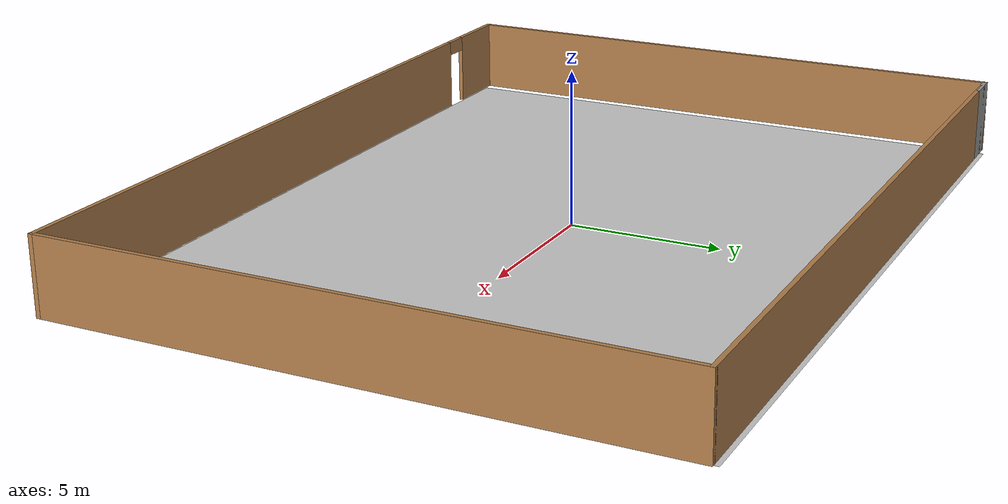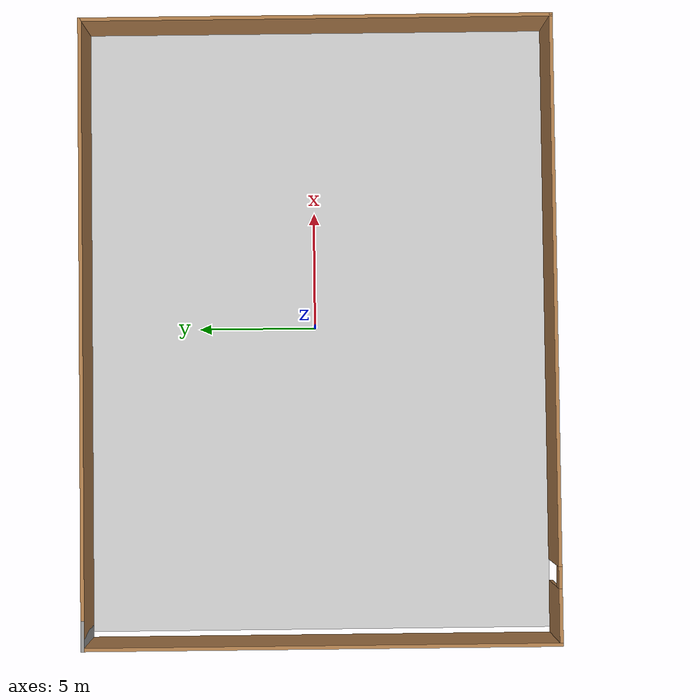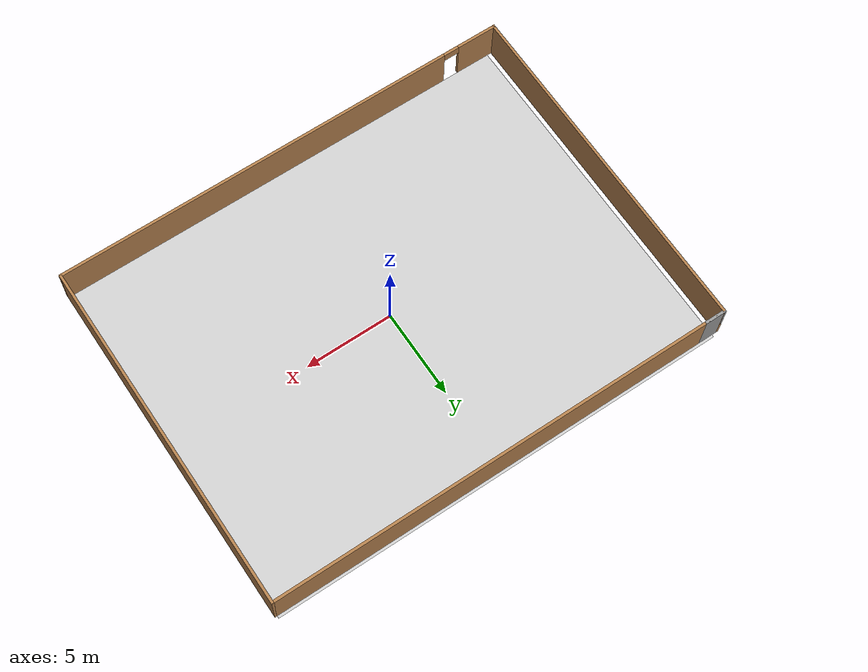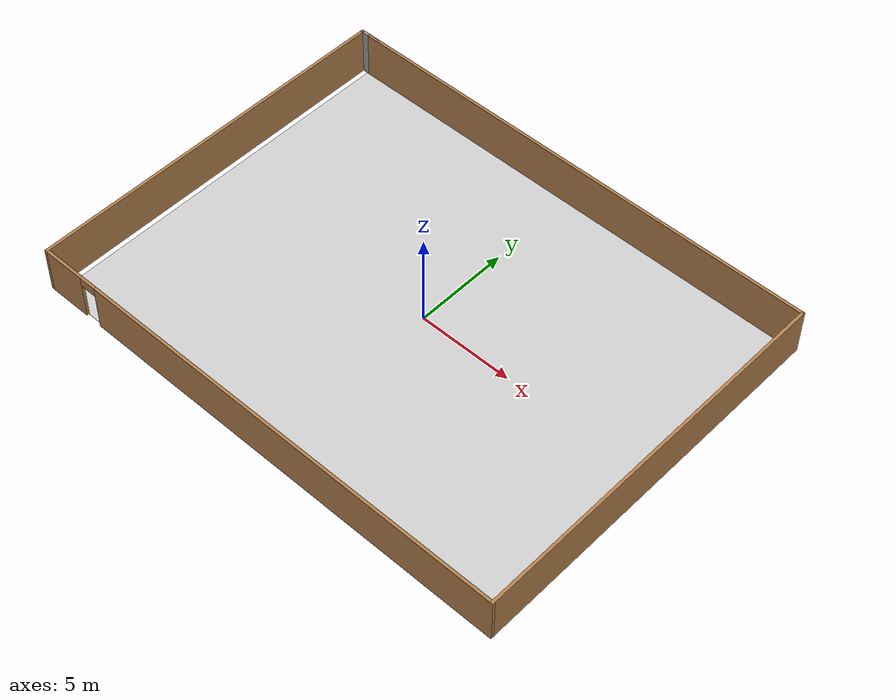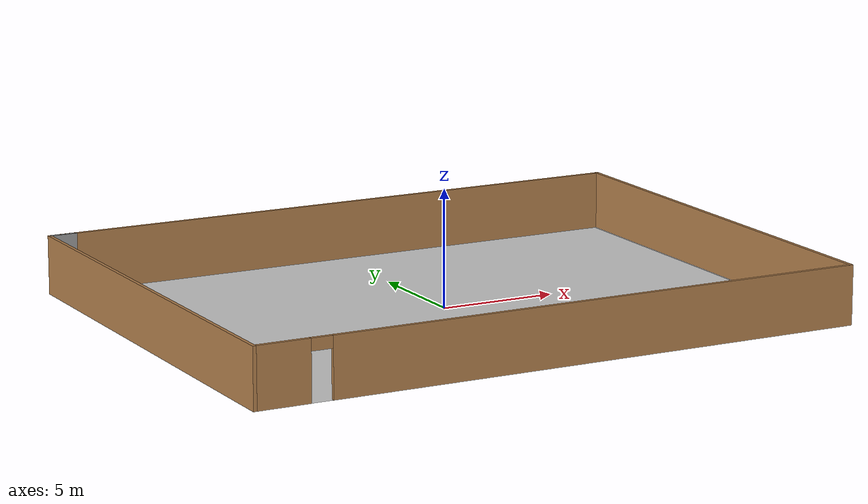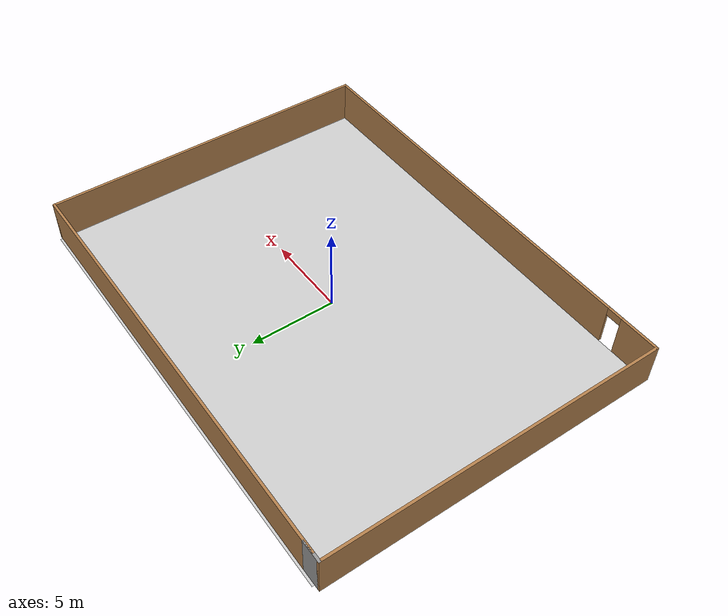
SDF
<sdf version="1.6">
 <world name="default">
  <light name="sun" type="directional">
   <pose>0 0 10 0 -0 0</pose>
   <diffuse>0.8 0.8 0.8 1</diffuse>
   <specular>0.1 0.1 0.1 1</specular>
   <attenuation>
    <range>1000</range>
    <constant>0.9</constant>
    <linear>0.01</linear>
    <quadratic>0.001</quadratic>
   </attenuation>
   <direction>-0.5 0.5 -1</direction>
  </light>
  <gravity>0 0 -9.8</gravity>
  <magnetic_field>6e-06 2.3e-05 -4.2e-05</magnetic_field>
  <atmosphere type="adiabatic"/>
  <physics name="default_physics" default="0" type="ode">
   <max_step_size>0.001</max_step_size>
   <real_time_factor>1</real_time_factor>
   <real_time_update_rate>1000</real_time_update_rate>
  </physics>
  <scene><ambient>0.4 0.4 0.4 1</ambient><background>0.7 0.7 0.7 1</background><shadows>1</shadows></scene>
  <spherical_coordinates>
   <surface_model>EARTH_WGS84</surface_model>
   <latitude_deg>0</latitude_deg>
   <longitude_deg>0</longitude_deg>
   <elevation>0</elevation>
   <heading_deg>0</heading_deg>
  </spherical_coordinates>
  <model name="robot_map">
   <static>1</static>
   <link name="link">
    <collision name="collision">
     <geometry><plane><normal>0 0 1</normal><size>26 20</size></plane></geometry>
     <surface><friction><ode><mu>100</mu><mu2>50</mu2></ode></friction></surface>
    </collision>
    <visual name="visual">
     <cast_shadows>0</cast_shadows>
     <geometry><plane><normal>0 0 1</normal><size>26 20</size></plane></geometry>
     <material>
      <script>
       <uri>model://robot_map/materials/scripts</uri>
       <uri>model://robot_map/materials/textures</uri>
       <name>Robot_map/Image</name>
      </script>
     </material>
    </visual>
   </link>
  </model>
  <model name="mapping.wolrd">
   <pose>-0.124209 -0.12927 0 0 -0 0</pose>
   <link name="Wall_11">
    <collision name="Wall_11_Collision">
     <geometry><box><size>26 0.15 2.5</size></box></geometry>
     <pose>0 0 1.25 0 -0 0</pose>
    </collision>
    <visual name="Wall_11_Visual">
     <pose>0 0 1.25 0 -0 0</pose>
     <geometry><box><size>26 0.15 2.5</size></box></geometry>
     <material>
      <script><uri>file://media/materials/scripts/gazebo.material</uri><name>Gazebo/Wood</name></script>
      <ambient>1 1 1 1</ambient>
     </material>
    </visual>
    <pose>0.25 9.925 0 0 -0 0</pose>
   </link>
   <link name="Wall_12">
    <collision name="Wall_12_Collision">
     <geometry><box><size>20 0.15 2.5</size></box></geometry>
     <pose>0 0 1.25 0 -0 0</pose>
    </collision>
    <visual name="Wall_12_Visual">
     <pose>0 0 1.25 0 -0 0</pose>
     <geometry><box><size>20 0.15 2.5</size></box></geometry>
     <material>
      <script><uri>file://media/materials/scripts/gazebo.material</uri><name>Gazebo/Wood</name></script>
      <ambient>1 1 1 1</ambient>
     </material>
    </visual>
    <pose>13.175 0 0 0 0 -1.5708</pose>
   </link>
   <link name="Wall_13">
    <pose>0 -9.925 0 0 -0 3.14159</pose>
    <visual name="Wall_13_Visual_0">
     <pose>-1.64145 0 1.25 0 -0 0</pose>
     <geometry><box><size>23.2171 0.15 2.5</size></box></geometry>
     <material>
      <script><uri>file://media/materials/scripts/gazebo.material</uri><name>Gazebo/Wood</name></script>
      <ambient>1 1 1 1</ambient>
     </material>
    </visual>
    <collision name="Wall_13_Collision_0">
     <geometry><box><size>23.2171 0.15 2.5</size></box></geometry>
     <pose>-1.64145 0 1.25 0 -0 0</pose>
    </collision>
    <visual name="Wall_13_Visual_1">
     <pose>12.0585 0 1.25 0 -0 0</pose>
     <geometry><box><size>2.38291 0.15 2.5</size></box></geometry>
     <material>
      <script><uri>file://media/materials/scripts/gazebo.material</uri><name>Gazebo/Wood</name></script>
      <ambient>1 1 1 1</ambient>
     </material>
    </visual>
    <collision name="Wall_13_Collision_1">
     <geometry><box><size>2.38291 0.15 2.5</size></box></geometry>
     <pose>12.0585 0 1.25 0 -0 0</pose>
    </collision>
    <visual name="Wall_13_Visual_2">
     <pose>10.4171 0 2.25 0 -0 0</pose>
     <geometry><box><size>0.9 0.15 0.5</size></box></geometry>
     <material>
      <script><uri>file://media/materials/scripts/gazebo.material</uri><name>Gazebo/Wood</name></script>
      <ambient>1 1 1 1</ambient>
     </material>
    </visual>
    <collision name="Wall_13_Collision_2">
     <geometry><box><size>0.9 0.15 0.5</size></box></geometry>
     <pose>10.4171 0 2.25 0 -0 0</pose>
    </collision>
   </link>
   <link name="Wall_14">
    <collision name="Wall_14_Collision">
     <geometry><box><size>20 0.15 2.5</size></box></geometry>
     <pose>0 0 1.25 0 -0 0</pose>
    </collision>
    <visual name="Wall_14_Visual">
     <pose>0 0 1.25 0 -0 0</pose>
     <geometry><box><size>20 0.15 2.5</size></box></geometry>
     <material>
      <script><uri>file://media/materials/scripts/gazebo.material</uri><name>Gazebo/Wood</name></script>
      <ambient>1 1 1 1</ambient>
     </material>
    </visual>
    <pose>-13.175 0 0 0 -0 1.5708</pose>
   </link>
   <link name="Wall_15">
    <collision name="Wall_15_Collision">
     <geometry><box><size>1.25 0.15 2.5</size></box></geometry>
     <pose>0 0 1.25 0 -0 0</pose>
    </collision>
    <visual name="Wall_15_Visual">
     <pose>0 0 1.25 0 -0 0</pose>
     <geometry><box><size>1.25 0.15 2.5</size></box></geometry>
     <material>
      <script><uri>file://media/materials/scripts/gazebo.material</uri><name>Gazebo/Grey</name></script>
      <ambient>1 1 1 1</ambient>
     </material>
    </visual>
    <pose>-12.625 9.925 0 0 -0 0</pose>
   </link>
   <static>1</static>
  </model>
 </world>
</sdf>
